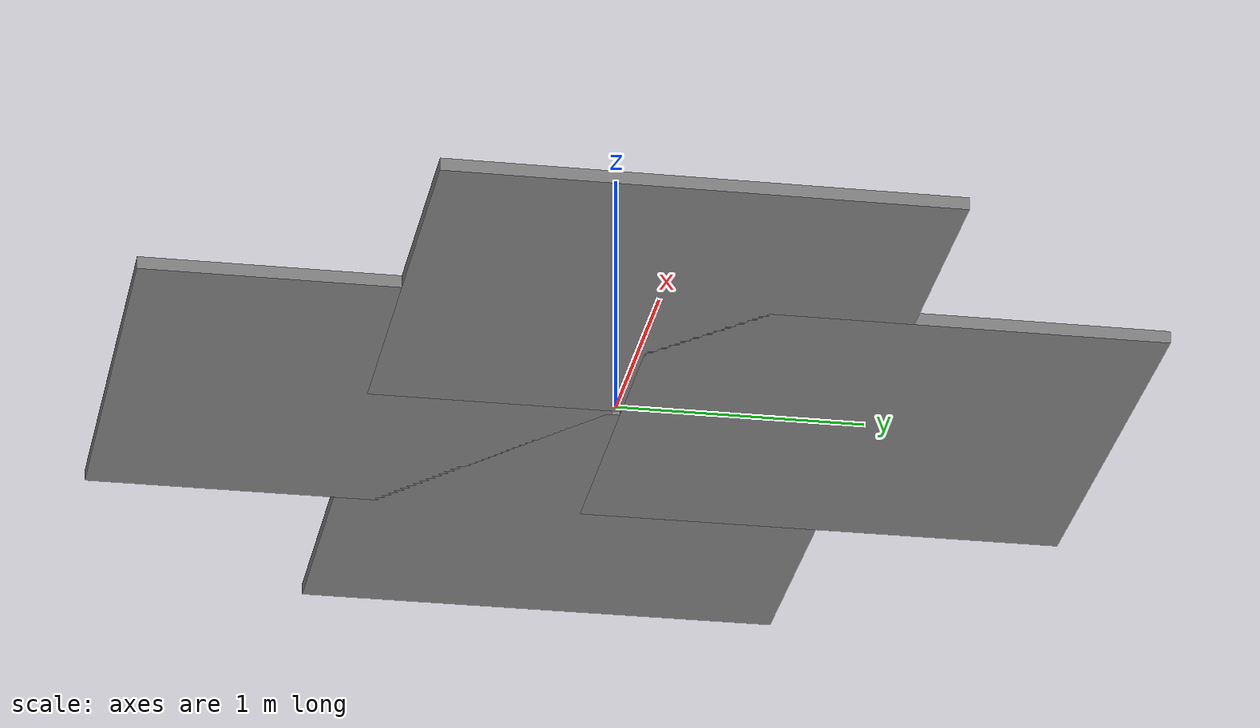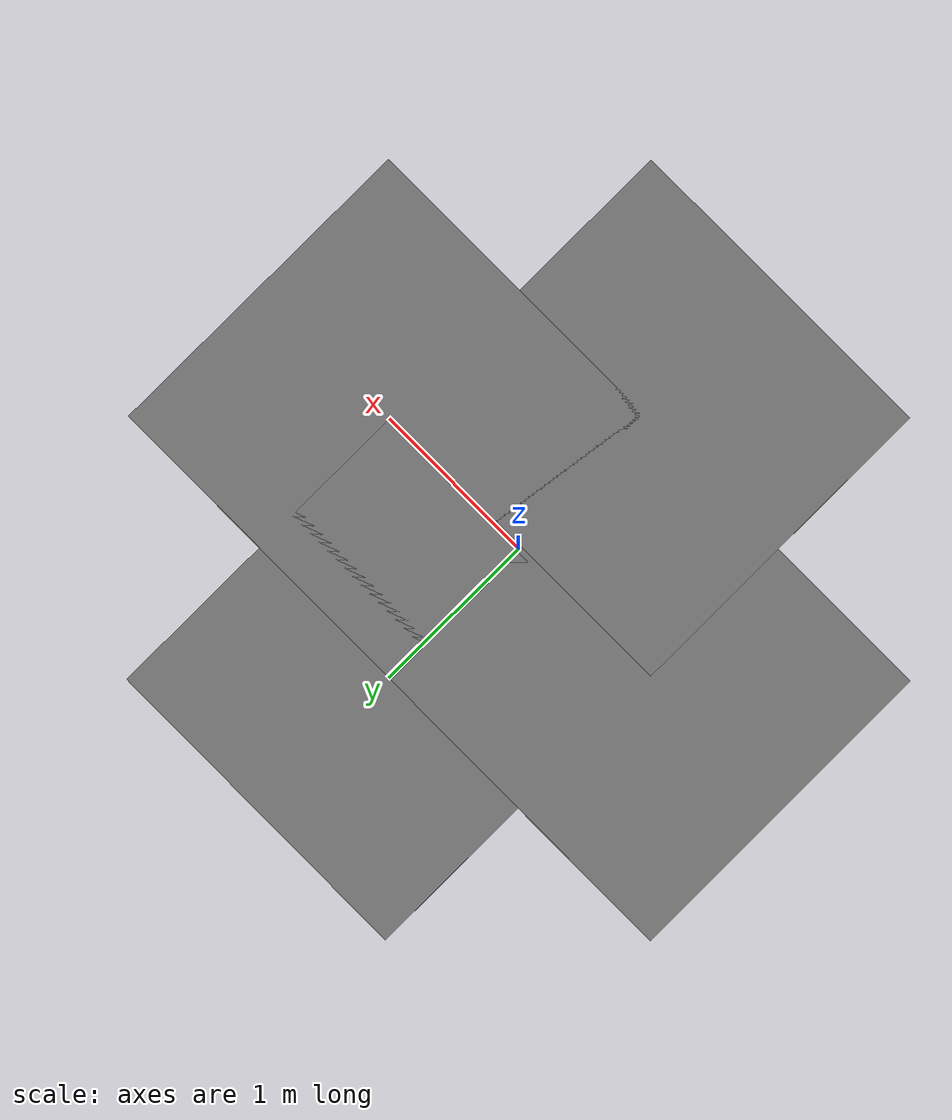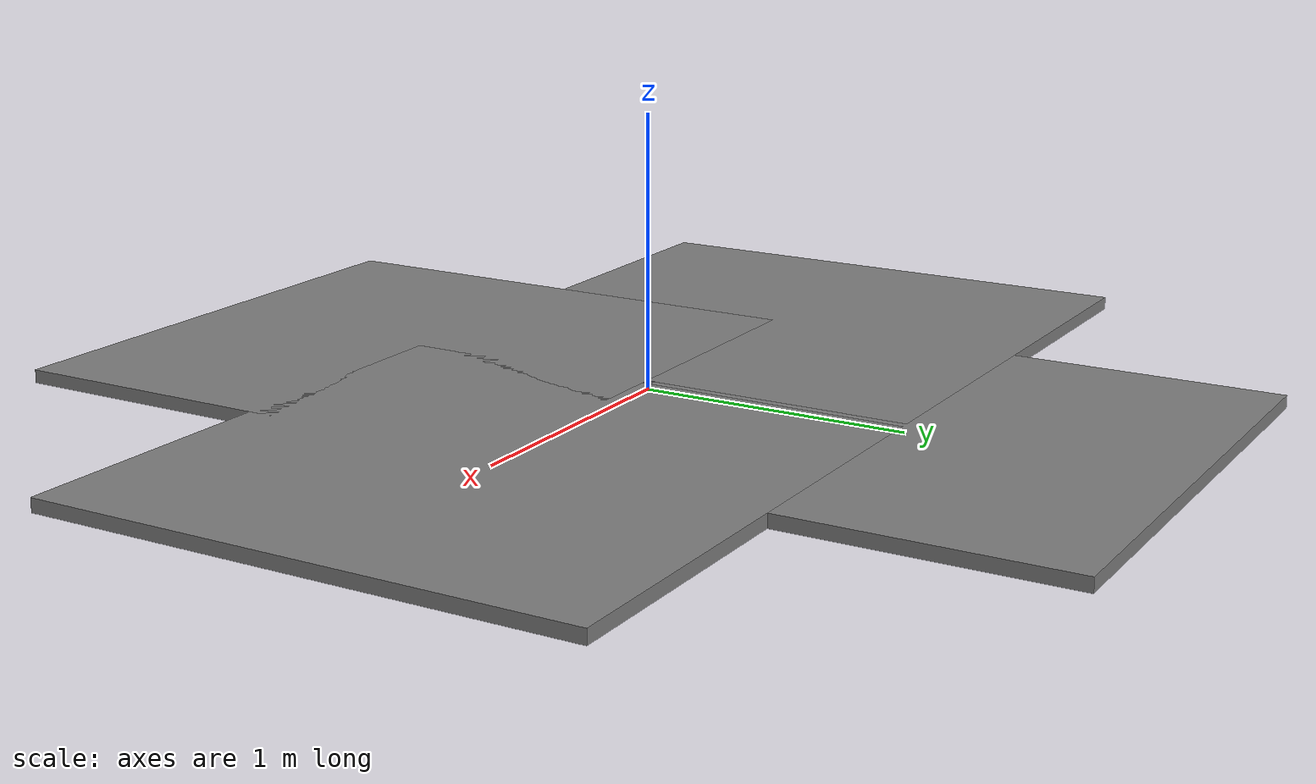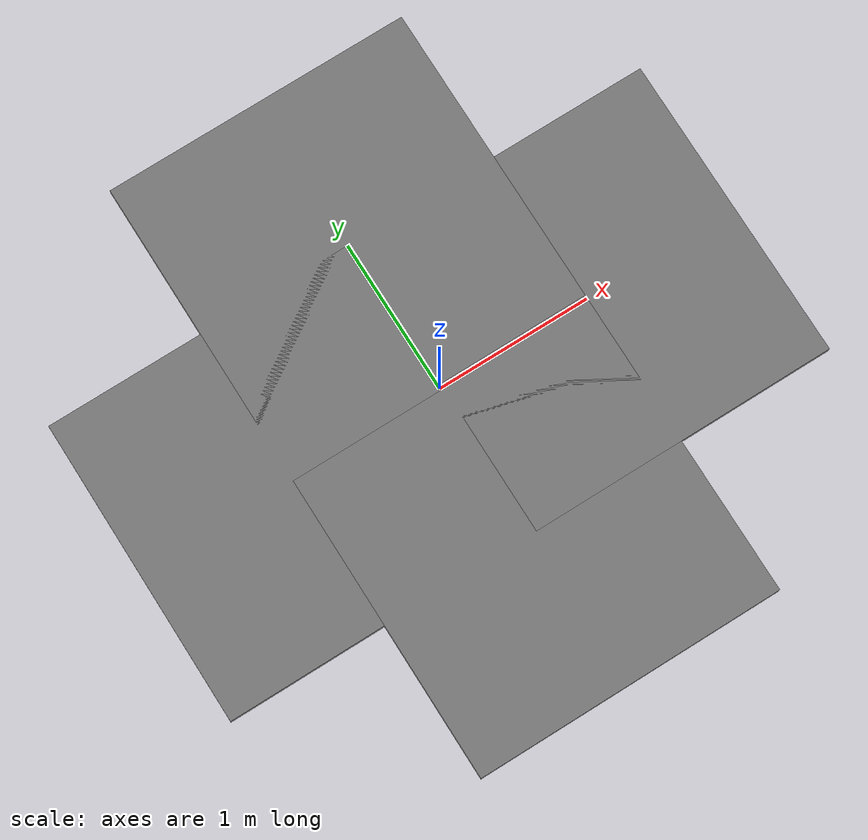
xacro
<?xml version="1.0"?>
<robot xmlns:xacro="http://www.ros.org/wiki/xacro" name="pusher">
<xacro:property name="m" value="5.0" />
<xacro:property name="l" value="2" />
<xacro:property name="w" value="2" />
<xacro:property name="h" value="0.05" />
<xacro:property name="hw" value="0.033" />
<xacro:property name="fl" value="0.3" />
<xacro:property name="fs" value=".05" />
<xacro:property name="fr" value=".01" />
<xacro:property name="Ih" value="${1/12*m*(w*w + l*l)}" />
<xacro:property name="Iw" value="${1/12*m*(h*h + l*l)}" />
<xacro:property name="Il" value="${1/12*m*(w*w + h*h)}" />

<material name="blockmat">
        <color rgba="0.5 0.5 0.5 1.0"/>
</material>

  <link name="base_link">
    <contact>
      <lateral_friction value="${fl}"/>
      <spinning_friction value="${fs}"/>
      <rolling_friction value="${fr}"/>
    </contact>
    <visual>
      <origin rpy="0 0 0" xyz="${(w + hw)/2} 0.0 0.0"/>
      <geometry>
        <box size="${l} ${w} ${h}"/>
      </geometry>
      <material name="blockmat"></material>
    </visual>
    <visual>
      <origin rpy="0 0 0" xyz="${-(w + hw)/2} 0.0 0.0"/>
      <geometry>
        <box size="${l} ${w} ${h}"/>
      </geometry>
      <material name="blockmat">
      </material>
    </visual>
    <visual>
      <origin rpy="0 0 0" xyz="0.0 ${-(l + hw)/2} 0.0"/>
      <geometry>
        <box size="${l} ${w} ${h}"/>
      </geometry>
      <material name="blockmat">
      </material>
    </visual>
    <visual>
      <origin rpy="0 0 0" xyz="0.0 ${(l + hw)/2} 0.0"/>
      <geometry>
        <box size="${l} ${w} ${h}"/>
      </geometry>
      <material name="blockmat">
      </material>
    </visual>
    <collision>
      <origin rpy="0 0 0" xyz="${(w + hw)/2} 0.0 0.0"/>
      <geometry>
        <box size="${l} ${w} ${h}"/>
      </geometry>
    </collision>
    <collision>
      <origin rpy="0 0 0" xyz="${-(w + hw)/2} 0.0 0.0"/>
      <geometry>
        <box size="${l} ${w} ${h}"/>
      </geometry>
    </collision>
    <collision>
      <origin rpy="0 0 0" xyz="0.0 ${-(l + hw)/2} 0.0"/>
      <geometry>
        <box size="${l} ${w} ${h}"/>
      </geometry>
    </collision>
    <collision>
      <origin rpy="0 0 0" xyz="0.0 ${(l + hw)/2} 0.0"/>
      <geometry>
        <box size="${l} ${w} ${h}"/>
      </geometry>
    </collision>
 </link>
</robot>
